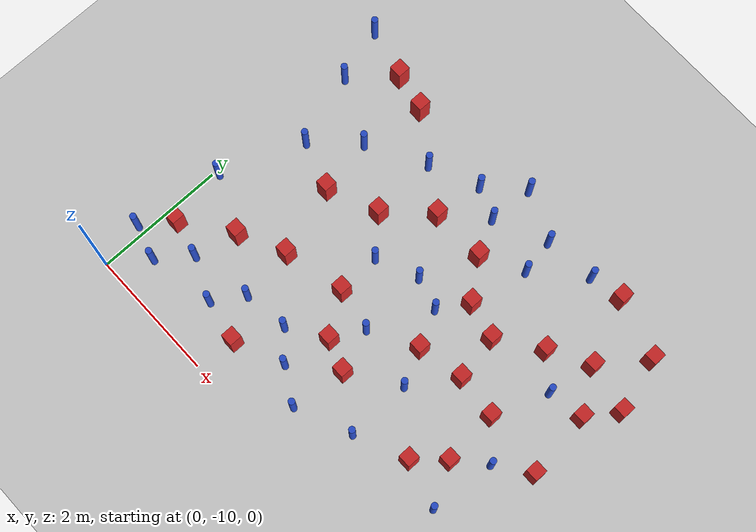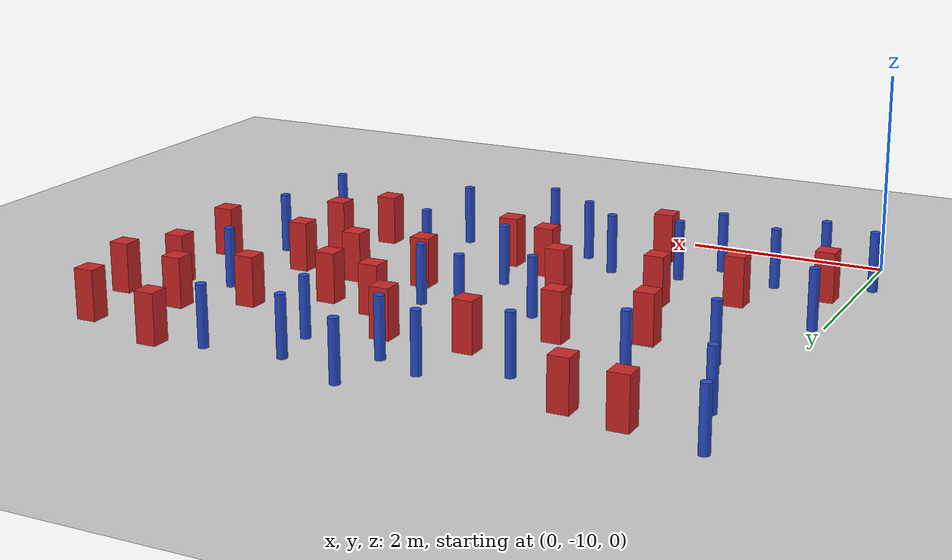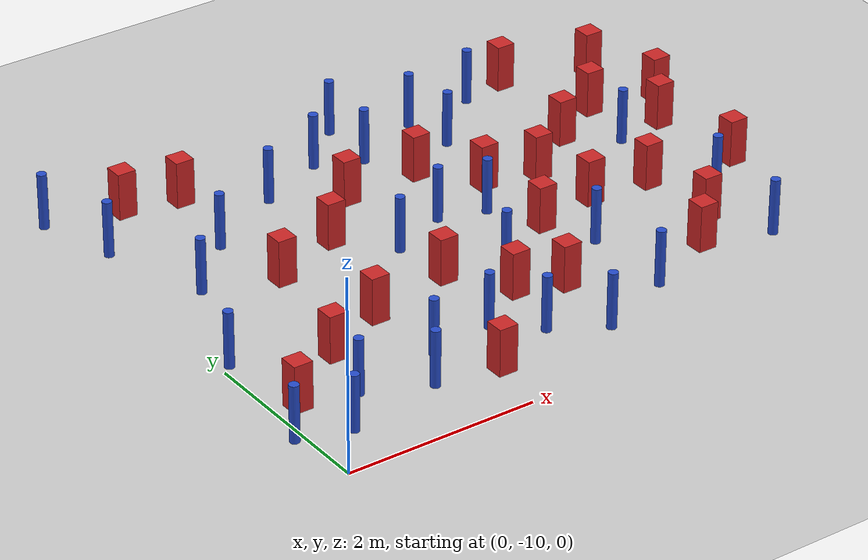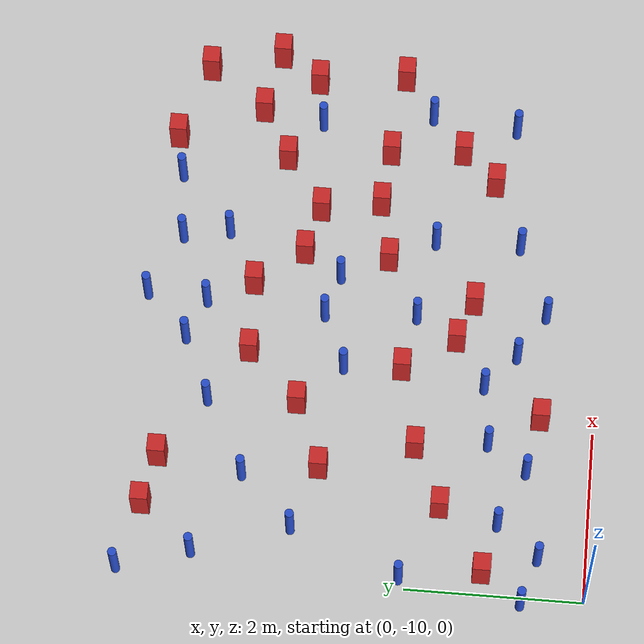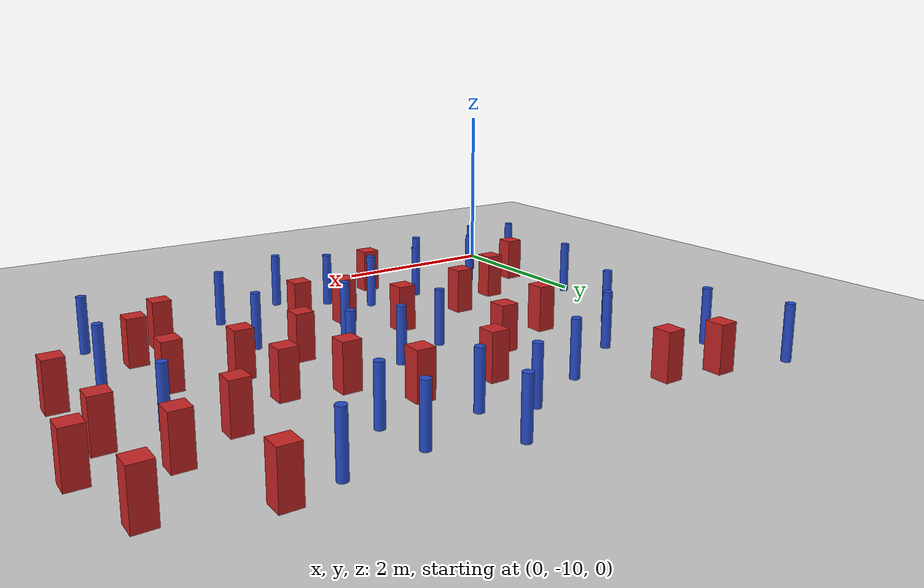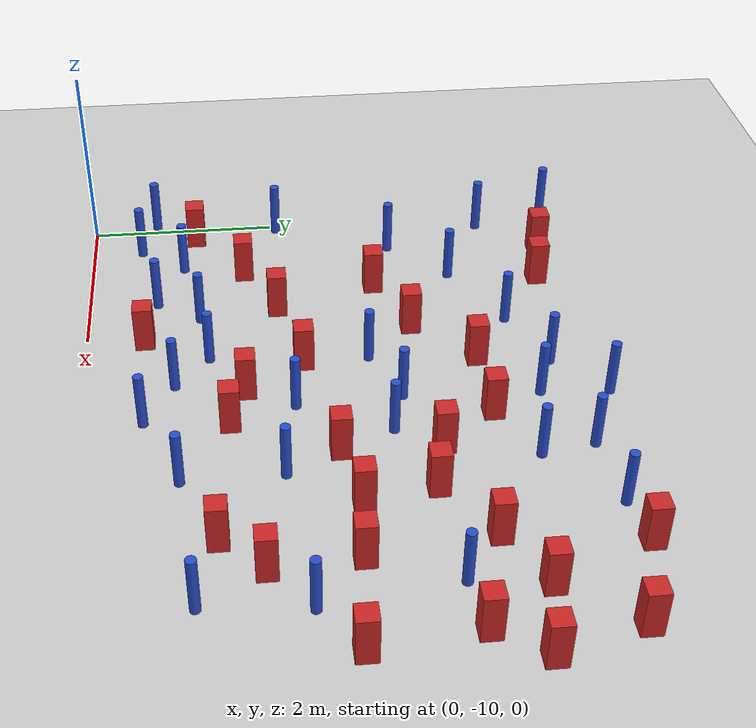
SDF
<sdf version="1.6">
 <world name="default">
  <model name="ground_plane">
   <static>1</static>
   <link name="link">
    <collision name="collision">
     <geometry><plane><normal>0 0 1</normal><size>100 100</size></plane></geometry>
     <surface><friction><ode><mu>100</mu><mu2>50</mu2></ode></friction></surface>
    </collision>
    <visual name="visual">
     <cast_shadows>0</cast_shadows>
     <geometry><plane><normal>0 0 1</normal><size>100 100</size></plane></geometry>
     <material>
      <ambient>1.0 1.0 1.0 1.0</ambient>
      <diffuse>0.8 0.8 0.8 1.0</diffuse>
      <specular>0.01 0.01 0.01 1.000000</specular>
     </material>
    </visual>
   </link>
  </model>
  <model name="square_post_obstacle1">
   <static>true</static>
   <pose>6.15523489396 -6.55460731302 8.22691968438e-08 7.2212513382e-06 -7.54495500217e-07 2.29674213826e-05</pose>
   <link name="link">
    <pose>0 0 0.25 0 -0 0</pose>
    <inertial>
     <mass>100</mass>
     <inertia>
      <ixx>0.166667</ixx>
      <ixy>0</ixy>
      <ixz>0</ixz>
      <iyy>0.166667</iyy>
      <iyz>0</iyz>
      <izz>0.166667</izz>
     </inertia>
    </inertial>
    <collision name="collision"><geometry><box><size>.2 .2 .5</size></box></geometry></collision>
    <visual name="visual">
     <geometry><box><size>.2 .2 .5</size></box></geometry>
     <material>
      <script><name>Gazebo/Red</name><uri>file://media/materials/scripts/gazebo.material</uri></script>
     </material>
    </visual>
   </link>
  </model>
  <model name="square_post_obstacle4">
   <static>true</static>
   <pose>1.65579554901 -8.00289531495 8.22691968438e-08 7.22125133819e-06 -7.54495500217e-07 2.29674213826e-05</pose>
   <link name="link">
    <pose>0 0 0.25 0 -0 0</pose>
    <inertial>
     <mass>100</mass>
     <inertia>
      <ixx>0.166667</ixx>
      <ixy>0</ixy>
      <ixz>0</ixz>
      <iyy>0.166667</iyy>
      <iyz>0</iyz>
      <izz>0.166667</izz>
     </inertia>
    </inertial>
    <collision name="collision"><geometry><box><size>.2 .2 .5</size></box></geometry></collision>
    <visual name="visual">
     <geometry><box><size>.2 .2 .5</size></box></geometry>
     <material>
      <script><name>Gazebo/Red</name><uri>file://media/materials/scripts/gazebo.material</uri></script>
     </material>
    </visual>
   </link>
  </model>
  <model name="pole_obstacle8">
   <static>true</static>
   <pose>2.83560817841 -9.08859295885 2.88873142074e-08 -9.90536692318e-09 4.6021994893e-07 -1.20965994988e-07</pose>
   <link name="link">
    <pose>0 0 0.3 0 -0 0</pose>
    <inertial>
     <mass>1</mass>
     <inertia><ixx>0.145833</ixx><ixy>0</ixy><ixz>0</ixz><iyy>0.145833</iyy><iyz>0</iyz><izz>0.125</izz></inertia>
    </inertial>
    <collision name="collision">
     <geometry><cylinder><radius>0.05</radius><length>.6</length></cylinder></geometry>
    </collision>
    <visual name="visual">
     <geometry><cylinder><radius>0.05</radius><length>.6</length></cylinder></geometry>
     <material>
      <script><name>Gazebo/Blue</name><uri>file://media/materials/scripts/gazebo.material</uri></script>
     </material>
    </visual>
   </link>
  </model>
  <model name="pole_obstacle12">
   <static>true</static>
   <pose>-0.015884387727 -4.78618979516 2.88873142074e-08 -9.90536689661e-09 4.60219948993e-07 -1.20965994958e-07</pose>
   <link name="link">
    <pose>0 0 0.3 0 -0 0</pose>
    <inertial>
     <mass>1</mass>
     <inertia><ixx>0.145833</ixx><ixy>0</ixy><ixz>0</ixz><iyy>0.145833</iyy><iyz>0</iyz><izz>0.125</izz></inertia>
    </inertial>
    <collision name="collision">
     <geometry><cylinder><radius>0.05</radius><length>.6</length></cylinder></geometry>
    </collision>
    <visual name="visual">
     <geometry><cylinder><radius>0.05</radius><length>.6</length></cylinder></geometry>
     <material>
      <script><name>Gazebo/Blue</name><uri>file://media/materials/scripts/gazebo.material</uri></script>
     </material>
    </visual>
   </link>
  </model>
  <model name="square_post_obstacle8">
   <static>true</static>
   <pose>1.33177363671 -5.12421022262 8.22691968438e-08 7.2212513382e-06 -7.54495500217e-07 2.29674213826e-05</pose>
   <link name="link">
    <pose>0 0 0.25 0 -0 0</pose>
    <inertial>
     <mass>100</mass>
     <inertia>
      <ixx>0.166667</ixx>
      <ixy>0</ixy>
      <ixz>0</ixz>
      <iyy>0.166667</iyy>
      <iyz>0</iyz>
      <izz>0.166667</izz>
     </inertia>
    </inertial>
    <collision name="collision"><geometry><box><size>.2 .2 .5</size></box></geometry></collision>
    <visual name="visual">
     <geometry><box><size>.2 .2 .5</size></box></geometry>
     <material>
      <script><name>Gazebo/Red</name><uri>file://media/materials/scripts/gazebo.material</uri></script>
     </material>
    </visual>
   </link>
  </model>
  <model name="pole_obstacle21">
   <static>true</static>
   <pose>3.18689587622 -6.85795421566 2.88873142074e-08 -9.90536689859e-09 4.60219948989e-07 -1.20965994961e-07</pose>
   <link name="link">
    <pose>0 0 0.3 0 -0 0</pose>
    <inertial>
     <mass>1</mass>
     <inertia><ixx>0.145833</ixx><ixy>0</ixy><ixz>0</ixz><iyy>0.145833</iyy><iyz>0</iyz><izz>0.125</izz></inertia>
    </inertial>
    <collision name="collision">
     <geometry><cylinder><radius>0.05</radius><length>.6</length></cylinder></geometry>
    </collision>
    <visual name="visual">
     <geometry><cylinder><radius>0.05</radius><length>.6</length></cylinder></geometry>
     <material>
      <script><name>Gazebo/Blue</name><uri>file://media/materials/scripts/gazebo.material</uri></script>
     </material>
    </visual>
   </link>
  </model>
  <model name="square_post_obstacle24">
   <static>true</static>
   <pose>6.23399795048 -5.26352225772 8.22691968438e-08 7.2212513382e-06 -7.54495500217e-07 2.29674213826e-05</pose>
   <link name="link">
    <pose>0 0 0.25 0 -0 0</pose>
    <inertial>
     <mass>100</mass>
     <inertia>
      <ixx>0.166667</ixx>
      <ixy>0</ixy>
      <ixz>0</ixz>
      <iyy>0.166667</iyy>
      <iyz>0</iyz>
      <izz>0.166667</izz>
     </inertia>
    </inertial>
    <collision name="collision"><geometry><box><size>.2 .2 .5</size></box></geometry></collision>
    <visual name="visual">
     <geometry><box><size>.2 .2 .5</size></box></geometry>
     <material>
      <script><name>Gazebo/Red</name><uri>file://media/materials/scripts/gazebo.material</uri></script>
     </material>
    </visual>
   </link>
  </model>
  <model name="pole_obstacle33">
   <static>true</static>
   <pose>3.30257602584 -4.80531550788 2.88873142074e-08 -9.90536689859e-09 4.60219948989e-07 -1.20965994961e-07</pose>
   <link name="link">
    <pose>0 0 0.3 0 -0 0</pose>
    <inertial>
     <mass>1</mass>
     <inertia><ixx>0.145833</ixx><ixy>0</ixy><ixz>0</ixz><iyy>0.145833</iyy><iyz>0</iyz><izz>0.125</izz></inertia>
    </inertial>
    <collision name="collision">
     <geometry><cylinder><radius>0.05</radius><length>.6</length></cylinder></geometry>
    </collision>
    <visual name="visual">
     <geometry><cylinder><radius>0.05</radius><length>.6</length></cylinder></geometry>
     <material>
      <script><name>Gazebo/Blue</name><uri>file://media/materials/scripts/gazebo.material</uri></script>
     </material>
    </visual>
   </link>
  </model>
  <model name="pole_obstacle34">
   <static>true</static>
   <pose>4.2005686208 -9.04657228519 2.88873142074e-08 -9.9053668967e-09 4.60219948993e-07 -1.20965994957e-07</pose>
   <link name="link">
    <pose>0 0 0.3 0 -0 0</pose>
    <inertial>
     <mass>1</mass>
     <inertia><ixx>0.145833</ixx><ixy>0</ixy><ixz>0</ixz><iyy>0.145833</iyy><iyz>0</iyz><izz>0.125</izz></inertia>
    </inertial>
    <collision name="collision">
     <geometry><cylinder><radius>0.05</radius><length>.6</length></cylinder></geometry>
    </collision>
    <visual name="visual">
     <geometry><cylinder><radius>0.05</radius><length>.6</length></cylinder></geometry>
     <material>
      <script><name>Gazebo/Blue</name><uri>file://media/materials/scripts/gazebo.material</uri></script>
     </material>
    </visual>
   </link>
  </model>
  <model name="pole_obstacle38">
   <static>true</static>
   <pose>1.74451612299 -8.82360755526 2.88873142074e-08 -9.90536690474e-09 4.60219948974e-07 -1.2096599497e-07</pose>
   <link name="link">
    <pose>0 0 0.3 0 -0 0</pose>
    <inertial>
     <mass>1</mass>
     <inertia><ixx>0.145833</ixx><ixy>0</ixy><ixz>0</ixz><iyy>0.145833</iyy><iyz>0</iyz><izz>0.125</izz></inertia>
    </inertial>
    <collision name="collision">
     <geometry><cylinder><radius>0.05</radius><length>.6</length></cylinder></geometry>
    </collision>
    <visual name="visual">
     <geometry><cylinder><radius>0.05</radius><length>.6</length></cylinder></geometry>
     <material>
      <script><name>Gazebo/Blue</name><uri>file://media/materials/scripts/gazebo.material</uri></script>
     </material>
    </visual>
   </link>
  </model>
  <model name="pole_obstacle45">
   <static>true</static>
   <pose>0.799896845168 -8.98861850064 2.88873142074e-08 -9.90536690779e-09 4.60219948967e-07 -1.20965994975e-07</pose>
   <link name="link">
    <pose>0 0 0.3 0 -0 0</pose>
    <inertial>
     <mass>1</mass>
     <inertia><ixx>0.145833</ixx><ixy>0</ixy><ixz>0</ixz><iyy>0.145833</iyy><iyz>0</iyz><izz>0.125</izz></inertia>
    </inertial>
    <collision name="collision">
     <geometry><cylinder><radius>0.05</radius><length>.6</length></cylinder></geometry>
    </collision>
    <visual name="visual">
     <geometry><cylinder><radius>0.05</radius><length>.6</length></cylinder></geometry>
     <material>
      <script><name>Gazebo/Blue</name><uri>file://media/materials/scripts/gazebo.material</uri></script>
     </material>
    </visual>
   </link>
  </model>
  <model name="pole_obstacle47">
   <static>true</static>
   <pose>0.223938761433 -5.60012867256 2.88873142074e-08 -9.90536689491e-09 4.60219948997e-07 -1.20965994955e-07</pose>
   <link name="link">
    <pose>0 0 0.3 0 -0 0</pose>
    <inertial>
     <mass>1</mass>
     <inertia><ixx>0.145833</ixx><ixy>0</ixy><ixz>0</ixz><iyy>0.145833</iyy><iyz>0</iyz><izz>0.125</izz></inertia>
    </inertial>
    <collision name="collision">
     <geometry><cylinder><radius>0.05</radius><length>.6</length></cylinder></geometry>
    </collision>
    <visual name="visual">
     <geometry><cylinder><radius>0.05</radius><length>.6</length></cylinder></geometry>
     <material>
      <script><name>Gazebo/Blue</name><uri>file://media/materials/scripts/gazebo.material</uri></script>
     </material>
    </visual>
   </link>
  </model>
  <model name="square_post_obstacle36">
   <static>true</static>
   <pose>3.93582270251 -7.54088329147 8.22691968438e-08 7.2212513382e-06 -7.54495500217e-07 2.29674213826e-05</pose>
   <link name="link">
    <pose>0 0 0.25 0 -0 0</pose>
    <inertial>
     <mass>100</mass>
     <inertia>
      <ixx>0.166667</ixx>
      <ixy>0</ixy>
      <ixz>0</ixz>
      <iyy>0.166667</iyy>
      <iyz>0</iyz>
      <izz>0.166667</izz>
     </inertia>
    </inertial>
    <collision name="collision"><geometry><box><size>.2 .2 .5</size></box></geometry></collision>
    <visual name="visual">
     <geometry><box><size>.2 .2 .5</size></box></geometry>
     <material>
      <script><name>Gazebo/Red</name><uri>file://media/materials/scripts/gazebo.material</uri></script>
     </material>
    </visual>
   </link>
  </model>
  <model name="pole_obstacle48">
   <static>true</static>
   <pose>2.55440678239 -7.12275029767 2.88873142074e-08 -9.90536689859e-09 4.60219948989e-07 -1.20965994961e-07</pose>
   <link name="link">
    <pose>0 0 0.3 0 -0 0</pose>
    <inertial>
     <mass>1</mass>
     <inertia><ixx>0.145833</ixx><ixy>0</ixy><ixz>0</ixz><iyy>0.145833</iyy><iyz>0</iyz><izz>0.125</izz></inertia>
    </inertial>
    <collision name="collision">
     <geometry><cylinder><radius>0.05</radius><length>.6</length></cylinder></geometry>
    </collision>
    <visual name="visual">
     <geometry><cylinder><radius>0.05</radius><length>.6</length></cylinder></geometry>
     <material>
      <script><name>Gazebo/Blue</name><uri>file://media/materials/scripts/gazebo.material</uri></script>
     </material>
    </visual>
   </link>
  </model>
  <model name="square_post_obstacle40">
   <static>true</static>
   <pose>5.13898463123 -6.26768390109 8.22691968438e-08 7.22125133819e-06 -7.54495500217e-07 2.29674213826e-05</pose>
   <link name="link">
    <pose>0 0 0.25 0 -0 0</pose>
    <inertial>
     <mass>100</mass>
     <inertia>
      <ixx>0.166667</ixx>
      <ixy>0</ixy>
      <ixz>0</ixz>
      <iyy>0.166667</iyy>
      <iyz>0</iyz>
      <izz>0.166667</izz>
     </inertia>
    </inertial>
    <collision name="collision"><geometry><box><size>.2 .2 .5</size></box></geometry></collision>
    <visual name="visual">
     <geometry><box><size>.2 .2 .5</size></box></geometry>
     <material>
      <script><name>Gazebo/Red</name><uri>file://media/materials/scripts/gazebo.material</uri></script>
     </material>
    </visual>
   </link>
  </model>
  <model name="square_post_obstacle43">
   <static>true</static>
   <pose>1.32492513881 -6.94075191689 8.22691968438e-08 7.2212513382e-06 -7.54495500217e-07 2.29674213826e-05</pose>
   <link name="link">
    <pose>0 0 0.25 0 -0 0</pose>
    <inertial>
     <mass>100</mass>
     <inertia>
      <ixx>0.166667</ixx>
      <ixy>0</ixy>
      <ixz>0</ixz>
      <iyy>0.166667</iyy>
      <iyz>0</iyz>
      <izz>0.166667</izz>
     </inertia>
    </inertial>
    <collision name="collision"><geometry><box><size>.2 .2 .5</size></box></geometry></collision>
    <visual name="visual">
     <geometry><box><size>.2 .2 .5</size></box></geometry>
     <material>
      <script><name>Gazebo/Red</name><uri>file://media/materials/scripts/gazebo.material</uri></script>
     </material>
    </visual>
   </link>
  </model>
  <model name="square_post_obstacle59">
   <static>true</static>
   <pose>3.95178121408 -6.5672181276 8.22691968438e-08 7.2212513382e-06 -7.54495500217e-07 2.29674213826e-05</pose>
   <link name="link">
    <pose>0 0 0.25 0 -0 0</pose>
    <inertial>
     <mass>100</mass>
     <inertia>
      <ixx>0.166667</ixx>
      <ixy>0</ixy>
      <ixz>0</ixz>
      <iyy>0.166667</iyy>
      <iyz>0</iyz>
      <izz>0.166667</izz>
     </inertia>
    </inertial>
    <collision name="collision"><geometry><box><size>.2 .2 .5</size></box></geometry></collision>
    <visual name="visual">
     <geometry><box><size>.2 .2 .5</size></box></geometry>
     <material>
      <script><name>Gazebo/Red</name><uri>file://media/materials/scripts/gazebo.material</uri></script>
     </material>
    </visual>
   </link>
  </model>
  <model name="square_post_obstacle63">
   <static>true</static>
   <pose>4.50835091529 -6.70969812702 8.22691968438e-08 7.2212513382e-06 -7.54495500217e-07 2.29674213826e-05</pose>
   <link name="link">
    <pose>0 0 0.25 0 -0 0</pose>
    <inertial>
     <mass>100</mass>
     <inertia>
      <ixx>0.166667</ixx>
      <ixy>0</ixy>
      <ixz>0</ixz>
      <iyy>0.166667</iyy>
      <iyz>0</iyz>
      <izz>0.166667</izz>
     </inertia>
    </inertial>
    <collision name="collision"><geometry><box><size>.2 .2 .5</size></box></geometry></collision>
    <visual name="visual">
     <geometry><box><size>.2 .2 .5</size></box></geometry>
     <material>
      <script><name>Gazebo/Red</name><uri>file://media/materials/scripts/gazebo.material</uri></script>
     </material>
    </visual>
   </link>
  </model>
  <model name="square_post_obstacle65">
   <static>true</static>
   <pose>3.51797669317 -6.01852277943 8.22691968438e-08 7.2212513382e-06 -7.54495500217e-07 2.29674213826e-05</pose>
   <link name="link">
    <pose>0 0 0.25 0 -0 0</pose>
    <inertial>
     <mass>100</mass>
     <inertia>
      <ixx>0.166667</ixx>
      <ixy>0</ixy>
      <ixz>0</ixz>
      <iyy>0.166667</iyy>
      <iyz>0</iyz>
      <izz>0.166667</izz>
     </inertia>
    </inertial>
    <collision name="collision"><geometry><box><size>.2 .2 .5</size></box></geometry></collision>
    <visual name="visual">
     <geometry><box><size>.2 .2 .5</size></box></geometry>
     <material>
      <script><name>Gazebo/Red</name><uri>file://media/materials/scripts/gazebo.material</uri></script>
     </material>
    </visual>
   </link>
  </model>
  <model name="square_post_obstacle67">
   <static>true</static>
   <pose>2.67918750792 -6.03658297002 8.22691968438e-08 7.2212513382e-06 -7.54495500217e-07 2.29674213826e-05</pose>
   <link name="link">
    <pose>0 0 0.25 0 -0 0</pose>
    <inertial>
     <mass>100</mass>
     <inertia>
      <ixx>0.166667</ixx>
      <ixy>0</ixy>
      <ixz>0</ixz>
      <iyy>0.166667</iyy>
      <iyz>0</iyz>
      <izz>0.166667</izz>
     </inertia>
    </inertial>
    <collision name="collision"><geometry><box><size>.2 .2 .5</size></box></geometry></collision>
    <visual name="visual">
     <geometry><box><size>.2 .2 .5</size></box></geometry>
     <material>
      <script><name>Gazebo/Red</name><uri>file://media/materials/scripts/gazebo.material</uri></script>
     </material>
    </visual>
   </link>
  </model>
  <model name="pole_obstacle80">
   <static>true</static>
   <pose>0.584050098353 -6.68560961796 2.88873142074e-08 -9.90536689661e-09 4.60219948993e-07 -1.20965994957e-07</pose>
   <link name="link">
    <pose>0 0 0.3 0 -0 0</pose>
    <inertial>
     <mass>1</mass>
     <inertia><ixx>0.145833</ixx><ixy>0</ixy><ixz>0</ixz><iyy>0.145833</iyy><iyz>0</iyz><izz>0.125</izz></inertia>
    </inertial>
    <collision name="collision">
     <geometry><cylinder><radius>0.05</radius><length>.6</length></cylinder></geometry>
    </collision>
    <visual name="visual">
     <geometry><cylinder><radius>0.05</radius><length>.6</length></cylinder></geometry>
     <material>
      <script><name>Gazebo/Blue</name><uri>file://media/materials/scripts/gazebo.material</uri></script>
     </material>
    </visual>
   </link>
  </model>
  <model name="square_post_obstacle73">
   <static>true</static>
   <pose>2.10167367243 -9.39552676679 8.22691968438e-08 7.22125133819e-06 -7.54495500217e-07 2.29674213826e-05</pose>
   <link name="link">
    <pose>0 0 0.25 0 -0 0</pose>
    <inertial>
     <mass>100</mass>
     <inertia>
      <ixx>0.166667</ixx>
      <ixy>0</ixy>
      <ixz>0</ixz>
      <iyy>0.166667</iyy>
      <iyz>0</iyz>
      <izz>0.166667</izz>
     </inertia>
    </inertial>
    <collision name="collision"><geometry><box><size>.2 .2 .5</size></box></geometry></collision>
    <visual name="visual">
     <geometry><box><size>.2 .2 .5</size></box></geometry>
     <material>
      <script><name>Gazebo/Red</name><uri>file://media/materials/scripts/gazebo.material</uri></script>
     </material>
    </visual>
   </link>
  </model>
  <model name="pole_obstacle86">
   <static>true</static>
   <pose>3.25798642361 -5.49286774271 2.88873142074e-08 -9.90536689859e-09 4.60219948989e-07 -1.20965994961e-07</pose>
   <link name="link">
    <pose>0 0 0.3 0 -0 0</pose>
    <inertial>
     <mass>1</mass>
     <inertia><ixx>0.145833</ixx><ixy>0</ixy><ixz>0</ixz><iyy>0.145833</iyy><iyz>0</iyz><izz>0.125</izz></inertia>
    </inertial>
    <collision name="collision">
     <geometry><cylinder><radius>0.05</radius><length>.6</length></cylinder></geometry>
    </collision>
    <visual name="visual">
     <geometry><cylinder><radius>0.05</radius><length>.6</length></cylinder></geometry>
     <material>
      <script><name>Gazebo/Blue</name><uri>file://media/materials/scripts/gazebo.material</uri></script>
     </material>
    </visual>
   </link>
  </model>
  <model name="pole_obstacle88">
   <static>true</static>
   <pose>-0.100325258526 -9.2987326424 2.88873142074e-08 -9.90536691075e-09 4.6021994896e-07 -1.2096599498e-07</pose>
   <link name="link">
    <pose>0 0 0.3 0 -0 0</pose>
    <inertial>
     <mass>1</mass>
     <inertia><ixx>0.145833</ixx><ixy>0</ixy><ixz>0</ixz><iyy>0.145833</iyy><iyz>0</iyz><izz>0.125</izz></inertia>
    </inertial>
    <collision name="collision">
     <geometry><cylinder><radius>0.05</radius><length>.6</length></cylinder></geometry>
    </collision>
    <visual name="visual">
     <geometry><cylinder><radius>0.05</radius><length>.6</length></cylinder></geometry>
     <material>
      <script><name>Gazebo/Blue</name><uri>file://media/materials/scripts/gazebo.material</uri></script>
     </material>
    </visual>
   </link>
  </model>
  <model name="square_post_obstacle84">
   <static>true</static>
   <pose>2.08957515569 -6.63243327905 8.22691968438e-08 7.22125133819e-06 -7.54495500217e-07 2.29674213826e-05</pose>
   <link name="link">
    <pose>0 0 0.25 0 -0 0</pose>
    <inertial>
     <mass>100</mass>
     <inertia>
      <ixx>0.166667</ixx>
      <ixy>0</ixy>
      <ixz>0</ixz>
      <iyy>0.166667</iyy>
      <iyz>0</iyz>
      <izz>0.166667</izz>
     </inertia>
    </inertial>
    <collision name="collision"><geometry><box><size>.2 .2 .5</size></box></geometry></collision>
    <visual name="visual">
     <geometry><box><size>.2 .2 .5</size></box></geometry>
     <material>
      <script><name>Gazebo/Red</name><uri>file://media/materials/scripts/gazebo.material</uri></script>
     </material>
    </visual>
   </link>
  </model>
  <model name="pole_obstacle94">
   <static>true</static>
   <pose>4.82792634187 -5.0581425169 2.88873142074e-08 -9.90536690842e-09 4.60219948965e-07 -1.20965994976e-07</pose>
   <link name="link">
    <pose>0 0 0.3 0 -0 0</pose>
    <inertial>
     <mass>1</mass>
     <inertia><ixx>0.145833</ixx><ixy>0</ixy><ixz>0</ixz><iyy>0.145833</iyy><iyz>0</iyz><izz>0.125</izz></inertia>
    </inertial>
    <collision name="collision">
     <geometry><cylinder><radius>0.05</radius><length>.6</length></cylinder></geometry>
    </collision>
    <visual name="visual">
     <geometry><cylinder><radius>0.05</radius><length>.6</length></cylinder></geometry>
     <material>
      <script><name>Gazebo/Blue</name><uri>file://media/materials/scripts/gazebo.material</uri></script>
     </material>
    </visual>
   </link>
  </model>
  <model name="pole_obstacle97">
   <static>true</static>
   <pose>5.79199215935 -7.92675662106 2.88873142074e-08 -9.90536690842e-09 4.60219948965e-07 -1.20965994976e-07</pose>
   <link name="link">
    <pose>0 0 0.3 0 -0 0</pose>
    <inertial>
     <mass>1</mass>
     <inertia><ixx>0.145833</ixx><ixy>0</ixy><ixz>0</ixz><iyy>0.145833</iyy><iyz>0</iyz><izz>0.125</izz></inertia>
    </inertial>
    <collision name="collision">
     <geometry><cylinder><radius>0.05</radius><length>.6</length></cylinder></geometry>
    </collision>
    <visual name="visual">
     <geometry><cylinder><radius>0.05</radius><length>.6</length></cylinder></geometry>
     <material>
      <script><name>Gazebo/Blue</name><uri>file://media/materials/scripts/gazebo.material</uri></script>
     </material>
    </visual>
   </link>
  </model>
  <model name="pole_obstacle98">
   <static>true</static>
   <pose>3.36134961096 -9.39401078143 2.88873142074e-08 -9.90536692318e-09 4.6021994893e-07 -1.20965994988e-07</pose>
   <link name="link">
    <pose>0 0 0.3 0 -0 0</pose>
    <inertial>
     <mass>1</mass>
     <inertia><ixx>0.145833</ixx><ixy>0</ixy><ixz>0</ixz><iyy>0.145833</iyy><iyz>0</iyz><izz>0.125</izz></inertia>
    </inertial>
    <collision name="collision">
     <geometry><cylinder><radius>0.05</radius><length>.6</length></cylinder></geometry>
    </collision>
    <visual name="visual">
     <geometry><cylinder><radius>0.05</radius><length>.6</length></cylinder></geometry>
     <material>
      <script><name>Gazebo/Blue</name><uri>file://media/materials/scripts/gazebo.material</uri></script>
     </material>
    </visual>
   </link>
  </model>
  <model name="pole_obstacle99">
   <static>true</static>
   <pose>2.04340160135 -5.61252961876 2.88873142074e-08 -9.90536689932e-09 4.60219948987e-07 -1.20965994962e-07</pose>
   <link name="link">
    <pose>0 0 0.3 0 -0 0</pose>
    <inertial>
     <mass>1</mass>
     <inertia><ixx>0.145833</ixx><ixy>0</ixy><ixz>0</ixz><iyy>0.145833</iyy><iyz>0</iyz><izz>0.125</izz></inertia>
    </inertial>
    <collision name="collision">
     <geometry><cylinder><radius>0.05</radius><length>.6</length></cylinder></geometry>
    </collision>
    <visual name="visual">
     <geometry><cylinder><radius>0.05</radius><length>.6</length></cylinder></geometry>
     <material>
      <script><name>Gazebo/Blue</name><uri>file://media/materials/scripts/gazebo.material</uri></script>
     </material>
    </visual>
   </link>
  </model>
  <model name="square_post_obstacle91">
   <static>true</static>
   <pose>4.63076504039 -7.40100267826 8.22691968438e-08 7.2212513382e-06 -7.54495500217e-07 2.29674213826e-05</pose>
   <link name="link">
    <pose>0 0 0.25 0 -0 0</pose>
    <inertial>
     <mass>100</mass>
     <inertia>
      <ixx>0.166667</ixx>
      <ixy>0</ixy>
      <ixz>0</ixz>
      <iyy>0.166667</iyy>
      <iyz>0</iyz>
      <izz>0.166667</izz>
     </inertia>
    </inertial>
    <collision name="collision"><geometry><box><size>.2 .2 .5</size></box></geometry></collision>
    <visual name="visual">
     <geometry><box><size>.2 .2 .5</size></box></geometry>
     <material>
      <script><name>Gazebo/Red</name><uri>file://media/materials/scripts/gazebo.material</uri></script>
     </material>
    </visual>
   </link>
  </model>
  <model name="square_post_obstacle97">
   <static>true</static>
   <pose>0.751550925898 -4.9945828177 8.22691968438e-08 7.2212513382e-06 -7.54495500217e-07 2.29674213826e-05</pose>
   <link name="link">
    <pose>0 0 0.25 0 -0 0</pose>
    <inertial>
     <mass>100</mass>
     <inertia>
      <ixx>0.166667</ixx>
      <ixy>0</ixy>
      <ixz>0</ixz>
      <iyy>0.166667</iyy>
      <iyz>0</iyz>
      <izz>0.166667</izz>
     </inertia>
    </inertial>
    <collision name="collision"><geometry><box><size>.2 .2 .5</size></box></geometry></collision>
    <visual name="visual">
     <geometry><box><size>.2 .2 .5</size></box></geometry>
     <material>
      <script><name>Gazebo/Red</name><uri>file://media/materials/scripts/gazebo.material</uri></script>
     </material>
    </visual>
   </link>
  </model>
  <model name="pole_obstacle109">
   <static>true</static>
   <pose>0.0920288677362 -7.93177436094 2.88873142074e-08 -9.90536689742e-09 4.60219948992e-07 -1.2096599496e-07</pose>
   <link name="link">
    <pose>0 0 0.3 0 -0 0</pose>
    <inertial>
     <mass>1</mass>
     <inertia><ixx>0.145833</ixx><ixy>0</ixy><ixz>0</ixz><iyy>0.145833</iyy><iyz>0</iyz><izz>0.125</izz></inertia>
    </inertial>
    <collision name="collision">
     <geometry><cylinder><radius>0.05</radius><length>.6</length></cylinder></geometry>
    </collision>
    <visual name="visual">
     <geometry><cylinder><radius>0.05</radius><length>.6</length></cylinder></geometry>
     <material>
      <script><name>Gazebo/Blue</name><uri>file://media/materials/scripts/gazebo.material</uri></script>
     </material>
    </visual>
   </link>
  </model>
  <model name="square_post_obstacle106">
   <static>true</static>
   <pose>6.46926936991 -6.0919839973 8.22691968438e-08 7.2212513382e-06 -7.54495500217e-07 2.29674213826e-05</pose>
   <link name="link">
    <pose>0 0 0.25 0 -0 0</pose>
    <inertial>
     <mass>100</mass>
     <inertia>
      <ixx>0.166667</ixx>
      <ixy>0</ixy>
      <ixz>0</ixz>
      <iyy>0.166667</iyy>
      <iyz>0</iyz>
      <izz>0.166667</izz>
     </inertia>
    </inertial>
    <collision name="collision"><geometry><box><size>.2 .2 .5</size></box></geometry></collision>
    <visual name="visual">
     <geometry><box><size>.2 .2 .5</size></box></geometry>
     <material>
      <script><name>Gazebo/Red</name><uri>file://media/materials/scripts/gazebo.material</uri></script>
     </material>
    </visual>
   </link>
  </model>
  <model name="pole_obstacle112">
   <static>true</static>
   <pose>4.14315950982 -5.67629952282 2.88873142074e-08 -9.90536690842e-09 4.60219948965e-07 -1.20965994976e-07</pose>
   <link name="link">
    <pose>0 0 0.3 0 -0 0</pose>
    <inertial>
     <mass>1</mass>
     <inertia><ixx>0.145833</ixx><ixy>0</ixy><ixz>0</ixz><iyy>0.145833</iyy><iyz>0</iyz><izz>0.125</izz></inertia>
    </inertial>
    <collision name="collision">
     <geometry><cylinder><radius>0.05</radius><length>.6</length></cylinder></geometry>
    </collision>
    <visual name="visual">
     <geometry><cylinder><radius>0.05</radius><length>.6</length></cylinder></geometry>
     <material>
      <script><name>Gazebo/Blue</name><uri>file://media/materials/scripts/gazebo.material</uri></script>
     </material>
    </visual>
   </link>
  </model>
  <model name="pole_obstacle116">
   <static>true</static>
   <pose>3.23591113725 -7.91310087199 2.88873142074e-08 -9.90536689859e-09 4.60219948989e-07 -1.20965994961e-07</pose>
   <link name="link">
    <pose>0 0 0.3 0 -0 0</pose>
    <inertial>
     <mass>1</mass>
     <inertia><ixx>0.145833</ixx><ixy>0</ixy><ixz>0</ixz><iyy>0.145833</iyy><iyz>0</iyz><izz>0.125</izz></inertia>
    </inertial>
    <collision name="collision">
     <geometry><cylinder><radius>0.05</radius><length>.6</length></cylinder></geometry>
    </collision>
    <visual name="visual">
     <geometry><cylinder><radius>0.05</radius><length>.6</length></cylinder></geometry>
     <material>
      <script><name>Gazebo/Blue</name><uri>file://media/materials/scripts/gazebo.material</uri></script>
     </material>
    </visual>
   </link>
  </model>
  <model name="pole_obstacle123">
   <static>true</static>
   <pose>4.18885670522 -8.06775491812 2.88873142074e-08 -9.9053668967e-09 4.60219948993e-07 -1.20965994957e-07</pose>
   <link name="link">
    <pose>0 0 0.3 0 -0 0</pose>
    <inertial>
     <mass>1</mass>
     <inertia><ixx>0.145833</ixx><ixy>0</ixy><ixz>0</ixz><iyy>0.145833</iyy><iyz>0</iyz><izz>0.125</izz></inertia>
    </inertial>
    <collision name="collision">
     <geometry><cylinder><radius>0.05</radius><length>.6</length></cylinder></geometry>
    </collision>
    <visual name="visual">
     <geometry><cylinder><radius>0.05</radius><length>.6</length></cylinder></geometry>
     <material>
      <script><name>Gazebo/Blue</name><uri>file://media/materials/scripts/gazebo.material</uri></script>
     </material>
    </visual>
   </link>
  </model>
  <model name="square_post_obstacle127">
   <static>true</static>
   <pose>6.27774237753 -7.57169944631 8.22691968438e-08 7.2212513382e-06 -7.54495500217e-07 2.29674213826e-05</pose>
   <link name="link">
    <pose>0 0 0.25 0 -0 0</pose>
    <inertial>
     <mass>100</mass>
     <inertia>
      <ixx>0.166667</ixx>
      <ixy>0</ixy>
      <ixz>0</ixz>
      <iyy>0.166667</iyy>
      <iyz>0</iyz>
      <izz>0.166667</izz>
     </inertia>
    </inertial>
    <collision name="collision"><geometry><box><size>.2 .2 .5</size></box></geometry></collision>
    <visual name="visual">
     <geometry><box><size>.2 .2 .5</size></box></geometry>
     <material>
      <script><name>Gazebo/Red</name><uri>file://media/materials/scripts/gazebo.material</uri></script>
     </material>
    </visual>
   </link>
  </model>
  <model name="square_post_obstacle137">
   <static>true</static>
   <pose>2.98960954385 -8.38658918743 8.22691968438e-08 7.22125133819e-06 -7.54495500217e-07 2.29674213826e-05</pose>
   <link name="link">
    <pose>0 0 0.25 0 -0 0</pose>
    <inertial>
     <mass>100</mass>
     <inertia>
      <ixx>0.166667</ixx>
      <ixy>0</ixy>
      <ixz>0</ixz>
      <iyy>0.166667</iyy>
      <iyz>0</iyz>
      <izz>0.166667</izz>
     </inertia>
    </inertial>
    <collision name="collision"><geometry><box><size>.2 .2 .5</size></box></geometry></collision>
    <visual name="visual">
     <geometry><box><size>.2 .2 .5</size></box></geometry>
     <material>
      <script><name>Gazebo/Red</name><uri>file://media/materials/scripts/gazebo.material</uri></script>
     </material>
    </visual>
   </link>
  </model>
  <model name="pole_obstacle145">
   <static>true</static>
   <pose>5.61520709312 -6.63913285828 2.88873142074e-08 -9.90536690842e-09 4.60219948965e-07 -1.20965994976e-07</pose>
   <link name="link">
    <pose>0 0 0.3 0 -0 0</pose>
    <inertial>
     <mass>1</mass>
     <inertia><ixx>0.145833</ixx><ixy>0</ixy><ixz>0</ixz><iyy>0.145833</iyy><iyz>0</iyz><izz>0.125</izz></inertia>
    </inertial>
    <collision name="collision">
     <geometry><cylinder><radius>0.05</radius><length>.6</length></cylinder></geometry>
    </collision>
    <visual name="visual">
     <geometry><cylinder><radius>0.05</radius><length>.6</length></cylinder></geometry>
     <material>
      <script><name>Gazebo/Blue</name><uri>file://media/materials/scripts/gazebo.material</uri></script>
     </material>
    </visual>
   </link>
  </model>
  <model name="square_post_obstacle140">
   <static>true</static>
   <pose>5.35845588256 -8.30735839934 8.22691968438e-08 7.22125133819e-06 -7.54495500217e-07 2.29674213826e-05</pose>
   <link name="link">
    <pose>0 0 0.25 0 -0 0</pose>
    <inertial>
     <mass>100</mass>
     <inertia>
      <ixx>0.166667</ixx>
      <ixy>0</ixy>
      <ixz>0</ixz>
      <iyy>0.166667</iyy>
      <iyz>0</iyz>
      <izz>0.166667</izz>
     </inertia>
    </inertial>
    <collision name="collision"><geometry><box><size>.2 .2 .5</size></box></geometry></collision>
    <visual name="visual">
     <geometry><box><size>.2 .2 .5</size></box></geometry>
     <material>
      <script><name>Gazebo/Red</name><uri>file://media/materials/scripts/gazebo.material</uri></script>
     </material>
    </visual>
   </link>
  </model>
  <model name="square_post_obstacle146">
   <static>true</static>
   <pose>3.46208118138 -8.5578440997 8.22691968438e-08 7.22125133819e-06 -7.54495500217e-07 2.29674213826e-05</pose>
   <link name="link">
    <pose>0 0 0.25 0 -0 0</pose>
    <inertial>
     <mass>100</mass>
     <inertia>
      <ixx>0.166667</ixx>
      <ixy>0</ixy>
      <ixz>0</ixz>
      <iyy>0.166667</iyy>
      <iyz>0</iyz>
      <izz>0.166667</izz>
     </inertia>
    </inertial>
    <collision name="collision"><geometry><box><size>.2 .2 .5</size></box></geometry></collision>
    <visual name="visual">
     <geometry><box><size>.2 .2 .5</size></box></geometry>
     <material>
      <script><name>Gazebo/Red</name><uri>file://media/materials/scripts/gazebo.material</uri></script>
     </material>
    </visual>
   </link>
  </model>
  <model name="pole_obstacle155">
   <static>true</static>
   <pose>0.430248924914 -9.45967326833 2.88873142074e-08 -9.90536691079e-09 4.6021994896e-07 -1.2096599498e-07</pose>
   <link name="link">
    <pose>0 0 0.3 0 -0 0</pose>
    <inertial>
     <mass>1</mass>
     <inertia><ixx>0.145833</ixx><ixy>0</ixy><ixz>0</ixz><iyy>0.145833</iyy><iyz>0</iyz><izz>0.125</izz></inertia>
    </inertial>
    <collision name="collision">
     <geometry><cylinder><radius>0.05</radius><length>.6</length></cylinder></geometry>
    </collision>
    <visual name="visual">
     <geometry><cylinder><radius>0.05</radius><length>.6</length></cylinder></geometry>
     <material>
      <script><name>Gazebo/Blue</name><uri>file://media/materials/scripts/gazebo.material</uri></script>
     </material>
    </visual>
   </link>
  </model>
  <model name="pole_obstacle160">
   <static>true</static>
   <pose>1.17814003068 -6.08426059343 2.88873142074e-08 -9.90536689852e-09 4.60219948989e-07 -1.2096599496e-07</pose>
   <link name="link">
    <pose>0 0 0.3 0 -0 0</pose>
    <inertial>
     <mass>1</mass>
     <inertia><ixx>0.145833</ixx><ixy>0</ixy><ixz>0</ixz><iyy>0.145833</iyy><iyz>0</iyz><izz>0.125</izz></inertia>
    </inertial>
    <collision name="collision">
     <geometry><cylinder><radius>0.05</radius><length>.6</length></cylinder></geometry>
    </collision>
    <visual name="visual">
     <geometry><cylinder><radius>0.05</radius><length>.6</length></cylinder></geometry>
     <material>
      <script><name>Gazebo/Blue</name><uri>file://media/materials/scripts/gazebo.material</uri></script>
     </material>
    </visual>
   </link>
  </model>
  <model name="square_post_obstacle158">
   <static>true</static>
   <pose>2.58879133568 -7.78857002042 8.22691968438e-08 7.2212513382e-06 -7.54495500217e-07 2.29674213826e-05</pose>
   <link name="link">
    <pose>0 0 0.25 0 -0 0</pose>
    <inertial>
     <mass>100</mass>
     <inertia>
      <ixx>0.166667</ixx>
      <ixy>0</ixy>
      <ixz>0</ixz>
      <iyy>0.166667</iyy>
      <iyz>0</iyz>
      <izz>0.166667</izz>
     </inertia>
    </inertial>
    <collision name="collision"><geometry><box><size>.2 .2 .5</size></box></geometry></collision>
    <visual name="visual">
     <geometry><box><size>.2 .2 .5</size></box></geometry>
     <material>
      <script><name>Gazebo/Red</name><uri>file://media/materials/scripts/gazebo.material</uri></script>
     </material>
    </visual>
   </link>
  </model>
  <model name="square_post_obstacle161">
   <static>true</static>
   <pose>0.965153273995 -8.32995368188 8.22691968438e-08 7.22125133819e-06 -7.54495500217e-07 2.29674213826e-05</pose>
   <link name="link">
    <pose>0 0 0.25 0 -0 0</pose>
    <inertial>
     <mass>100</mass>
     <inertia>
      <ixx>0.166667</ixx>
      <ixy>0</ixy>
      <ixz>0</ixz>
      <iyy>0.166667</iyy>
      <iyz>0</iyz>
      <izz>0.166667</izz>
     </inertia>
    </inertial>
    <collision name="collision"><geometry><box><size>.2 .2 .5</size></box></geometry></collision>
    <visual name="visual">
     <geometry><box><size>.2 .2 .5</size></box></geometry>
     <material>
      <script><name>Gazebo/Red</name><uri>file://media/materials/scripts/gazebo.material</uri></script>
     </material>
    </visual>
   </link>
  </model>
  <model name="pole_obstacle178">
   <static>true</static>
   <pose>2.78429531516 -5.29387578012 2.88873142074e-08 -9.90536689859e-09 4.60219948989e-07 -1.20965994961e-07</pose>
   <link name="link">
    <pose>0 0 0.3 0 -0 0</pose>
    <inertial>
     <mass>1</mass>
     <inertia><ixx>0.145833</ixx><ixy>0</ixy><ixz>0</ixz><iyy>0.145833</iyy><iyz>0</iyz><izz>0.125</izz></inertia>
    </inertial>
    <collision name="collision">
     <geometry><cylinder><radius>0.05</radius><length>.6</length></cylinder></geometry>
    </collision>
    <visual name="visual">
     <geometry><cylinder><radius>0.05</radius><length>.6</length></cylinder></geometry>
     <material>
      <script><name>Gazebo/Blue</name><uri>file://media/materials/scripts/gazebo.material</uri></script>
     </material>
    </visual>
   </link>
  </model>
  <model name="square_post_obstacle183">
   <static>true</static>
   <pose>5.32241975391 -4.96717654231 8.22691968438e-08 7.22125133819e-06 -7.54495500217e-07 2.29674213826e-05</pose>
   <link name="link">
    <pose>0 0 0.25 0 -0 0</pose>
    <inertial>
     <mass>100</mass>
     <inertia>
      <ixx>0.166667</ixx>
      <ixy>0</ixy>
      <ixz>0</ixz>
      <iyy>0.166667</iyy>
      <iyz>0</iyz>
      <izz>0.166667</izz>
     </inertia>
    </inertial>
    <collision name="collision"><geometry><box><size>.2 .2 .5</size></box></geometry></collision>
    <visual name="visual">
     <geometry><box><size>.2 .2 .5</size></box></geometry>
     <material>
      <script><name>Gazebo/Red</name><uri>file://media/materials/scripts/gazebo.material</uri></script>
     </material>
    </visual>
   </link>
  </model>
  <model name="pole_obstacle184">
   <static>true</static>
   <pose>1.44408533583 -9.27260449338 2.88873142074e-08 -9.90536690474e-09 4.60219948974e-07 -1.2096599497e-07</pose>
   <link name="link">
    <pose>0 0 0.3 0 -0 0</pose>
    <inertial>
     <mass>1</mass>
     <inertia><ixx>0.145833</ixx><ixy>0</ixy><ixz>0</ixz><iyy>0.145833</iyy><iyz>0</iyz><izz>0.125</izz></inertia>
    </inertial>
    <collision name="collision">
     <geometry><cylinder><radius>0.05</radius><length>.6</length></cylinder></geometry>
    </collision>
    <visual name="visual">
     <geometry><cylinder><radius>0.05</radius><length>.6</length></cylinder></geometry>
     <material>
      <script><name>Gazebo/Blue</name><uri>file://media/materials/scripts/gazebo.material</uri></script>
     </material>
    </visual>
   </link>
  </model>
  <model name="square_post_obstacle189">
   <static>true</static>
   <pose>4.97971113182 -8.71012689874 8.22691968438e-08 7.2212513382e-06 -7.54495500217e-07 2.29674213826e-05</pose>
   <link name="link">
    <pose>0 0 0.25 0 -0 0</pose>
    <inertial>
     <mass>100</mass>
     <inertia>
      <ixx>0.166667</ixx>
      <ixy>0</ixy>
      <ixz>0</ixz>
      <iyy>0.166667</iyy>
      <iyz>0</iyz>
      <izz>0.166667</izz>
     </inertia>
    </inertial>
    <collision name="collision"><geometry><box><size>.2 .2 .5</size></box></geometry></collision>
    <visual name="visual">
     <geometry><box><size>.2 .2 .5</size></box></geometry>
     <material>
      <script><name>Gazebo/Red</name><uri>file://media/materials/scripts/gazebo.material</uri></script>
     </material>
    </visual>
   </link>
  </model>
  <model name="square_post_obstacle198">
   <static>true</static>
   <pose>5.29511588237 -7.46707636866 8.22691968438e-08 7.22125133819e-06 -7.54495500217e-07 2.29674213826e-05</pose>
   <link name="link">
    <pose>0 0 0.25 0 -0 0</pose>
    <inertial>
     <mass>100</mass>
     <inertia>
      <ixx>0.166667</ixx>
      <ixy>0</ixy>
      <ixz>0</ixz>
      <iyy>0.166667</iyy>
      <iyz>0</iyz>
      <izz>0.166667</izz>
     </inertia>
    </inertial>
    <collision name="collision"><geometry><box><size>.2 .2 .5</size></box></geometry></collision>
    <visual name="visual">
     <geometry><box><size>.2 .2 .5</size></box></geometry>
     <material>
      <script><name>Gazebo/Red</name><uri>file://media/materials/scripts/gazebo.material</uri></script>
     </material>
    </visual>
   </link>
  </model>
  <model name="pole_obstacle205">
   <static>true</static>
   <pose>2.43189044611 -8.7387055438 2.88873142074e-08 -9.90536692318e-09 4.6021994893e-07 -1.20965994988e-07</pose>
   <link name="link">
    <pose>0 0 0.3 0 -0 0</pose>
    <inertial>
     <mass>1</mass>
     <inertia><ixx>0.145833</ixx><ixy>0</ixy><ixz>0</ixz><iyy>0.145833</iyy><iyz>0</iyz><izz>0.125</izz></inertia>
    </inertial>
    <collision name="collision">
     <geometry><cylinder><radius>0.05</radius><length>.6</length></cylinder></geometry>
    </collision>
    <visual name="visual">
     <geometry><cylinder><radius>0.05</radius><length>.6</length></cylinder></geometry>
     <material>
      <script><name>Gazebo/Blue</name><uri>file://media/materials/scripts/gazebo.material</uri></script>
     </material>
    </visual>
   </link>
  </model>
  <model name="pole_obstacle206">
   <static>true</static>
   <pose>3.67244478578 -7.00342872907 2.88873142074e-08 -9.90536689859e-09 4.60219948989e-07 -1.20965994961e-07</pose>
   <link name="link">
    <pose>0 0 0.3 0 -0 0</pose>
    <inertial>
     <mass>1</mass>
     <inertia><ixx>0.145833</ixx><ixy>0</ixy><ixz>0</ixz><iyy>0.145833</iyy><iyz>0</iyz><izz>0.125</izz></inertia>
    </inertial>
    <collision name="collision">
     <geometry><cylinder><radius>0.05</radius><length>.6</length></cylinder></geometry>
    </collision>
    <visual name="visual">
     <geometry><cylinder><radius>0.05</radius><length>.6</length></cylinder></geometry>
     <material>
      <script><name>Gazebo/Blue</name><uri>file://media/materials/scripts/gazebo.material</uri></script>
     </material>
    </visual>
   </link>
  </model>
  <model name="pole_obstacle212">
   <static>true</static>
   <pose>4.04713337033 -5.13937798205 2.88873142074e-08 -9.90536690822e-09 4.60219948966e-07 -1.20965994976e-07</pose>
   <link name="link">
    <pose>0 0 0.3 0 -0 0</pose>
    <inertial>
     <mass>1</mass>
     <inertia><ixx>0.145833</ixx><ixy>0</ixy><ixz>0</ixz><iyy>0.145833</iyy><iyz>0</iyz><izz>0.125</izz></inertia>
    </inertial>
    <collision name="collision">
     <geometry><cylinder><radius>0.05</radius><length>.6</length></cylinder></geometry>
    </collision>
    <visual name="visual">
     <geometry><cylinder><radius>0.05</radius><length>.6</length></cylinder></geometry>
     <material>
      <script><name>Gazebo/Blue</name><uri>file://media/materials/scripts/gazebo.material</uri></script>
     </material>
    </visual>
   </link>
  </model>
  <model name="pole_obstacle213">
   <static>true</static>
   <pose>5.69798239209 -8.91635763632 2.88873142074e-08 -9.9053668967e-09 4.60219948993e-07 -1.20965994957e-07</pose>
   <link name="link">
    <pose>0 0 0.3 0 -0 0</pose>
    <inertial>
     <mass>1</mass>
     <inertia><ixx>0.145833</ixx><ixy>0</ixy><ixz>0</ixz><iyy>0.145833</iyy><iyz>0</iyz><izz>0.125</izz></inertia>
    </inertial>
    <collision name="collision">
     <geometry><cylinder><radius>0.05</radius><length>.6</length></cylinder></geometry>
    </collision>
    <visual name="visual">
     <geometry><cylinder><radius>0.05</radius><length>.6</length></cylinder></geometry>
     <material>
      <script><name>Gazebo/Blue</name><uri>file://media/materials/scripts/gazebo.material</uri></script>
     </material>
    </visual>
   </link>
  </model>
  <model name="square_post_obstacle210">
   <static>true</static>
   <pose>0.234585032622 -8.84661003534 8.22691968438e-08 7.22125133819e-06 -7.54495500217e-07 2.29674213826e-05</pose>
   <link name="link">
    <pose>0 0 0.25 0 -0 0</pose>
    <inertial>
     <mass>100</mass>
     <inertia>
      <ixx>0.166667</ixx>
      <ixy>0</ixy>
      <ixz>0</ixz>
      <iyy>0.166667</iyy>
      <iyz>0</iyz>
      <izz>0.166667</izz>
     </inertia>
    </inertial>
    <collision name="collision"><geometry><box><size>.2 .2 .5</size></box></geometry></collision>
    <visual name="visual">
     <geometry><box><size>.2 .2 .5</size></box></geometry>
     <material>
      <script><name>Gazebo/Red</name><uri>file://media/materials/scripts/gazebo.material</uri></script>
     </material>
    </visual>
   </link>
  </model>
  <model name="square_post_obstacle221">
   <static>true</static>
   <pose>5.73868003262 -5.93600003534 8.22691968438e-08 7.22125133819e-06 -7.54495500217e-07 2.29674213826e-05</pose>
   <link name="link">
    <pose>0 0 0.25 0 -0 0</pose>
    <inertial>
     <mass>100</mass>
     <inertia>
      <ixx>0.166667</ixx>
      <ixy>0</ixy>
      <ixz>0</ixz>
      <iyy>0.166667</iyy>
      <iyz>0</iyz>
      <izz>0.166667</izz>
     </inertia>
    </inertial>
    <collision name="collision"><geometry><box><size>.2 .2 .5</size></box></geometry></collision>
    <visual name="visual">
     <geometry><box><size>.2 .2 .5</size></box></geometry>
     <material>
      <script><name>Gazebo/Red</name><uri>file://media/materials/scripts/gazebo.material</uri></script>
     </material>
    </visual>
   </link>
  </model>
 </world>
</sdf>
